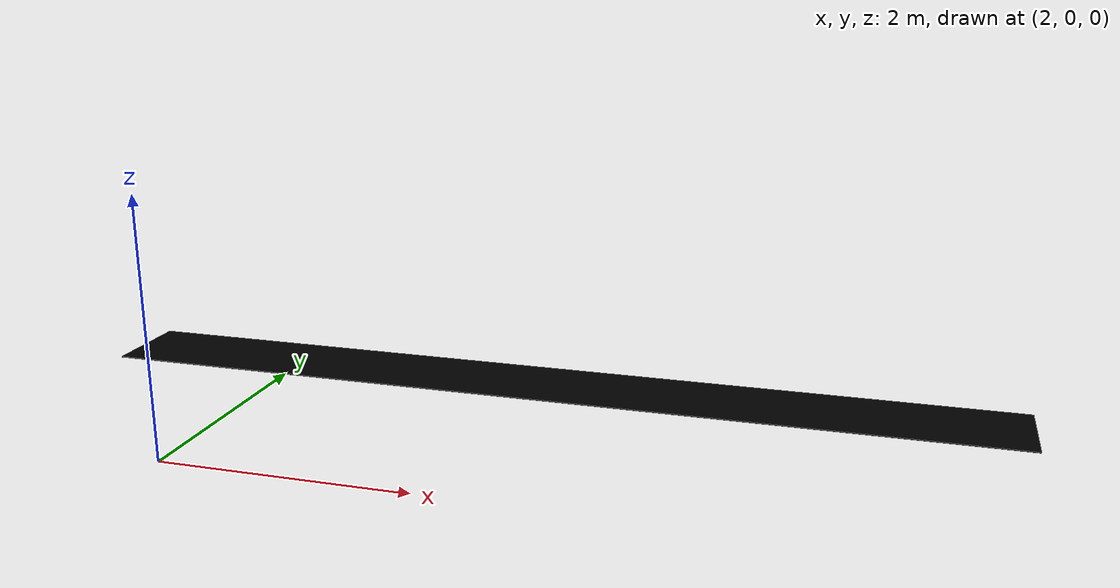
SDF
<?xml version="1.0" ?>
<sdf version="1.6">
  <model name="green_conveyor_belt">

    <model name="green_conveyor_belt_fixed">
      <static>true</static>
      <pose>0 0 0 0 0 0</pose>
      <link name="link">
        <pose>0 0 0 0 0 0</pose>
      </link>
    </model>

    <model name="green_conveyor_belt_moving">
      <static>false</static>
      <pose>0 0 0.92 0 0 0</pose>
      <link name="belt">
        <pose>5 0 -0.003 0 0 0</pose>

        <inertial>
          <inertia>
            <ixx>3.8185</ixx>
            <ixy>0</ixy>
            <ixz>0</ixz>
            <iyy>1781.5</iyy>
            <iyz>0</iyz>
            <izz>1784.72</izz>
          </inertia>
          <mass>100</mass>
        </inertial>

        <collision name="belt_collision">
          <geometry>
            <box>
              <size>6 0.6 0.006</size>
            </box>
          </geometry>

          <surface>
            <friction>
              <ode>
                <mu>1.0</mu>
                <mu2>1.0</mu2>
              </ode>
              <torsional>
                <coefficient>1000.0</coefficient>
                <patch_radius>0.1</patch_radius>
              </torsional>
            </friction>
          </surface>

        </collision>

        <visual name="visual">
        <geometry>
          <box>
            <size>6 0.6 0.006</size>
          </box>
        </geometry>
        <material>
          <ambient>0 0 0 1</ambient>
          <diffuse>0 0 0 1</diffuse>
          <specular>0.1 0.1 0.1 1</specular>
          <emissive>0 0 0 0</emissive>
        </material>
      </visual>

      </link>
    </model>

    <joint name="belt_joint" type="prismatic">
      <parent>green_conveyor_belt_fixed::link</parent>
      <child>green_conveyor_belt_moving::belt</child>
      <axis>
        <xyz>1 0 0</xyz>
        <limit>
          <lower>0</lower>
          <upper>1.0</upper>
        </limit>
      </axis>
    </joint>

    <plugin name="conveyor_belt_plugin" filename="libROSConveyorBeltPlugin.so">
      <robot_namespace>/green_conveyor</robot_namespace>
      <population_rate_modifier_topic>/gazebo_sim/population/rate_modifier</population_rate_modifier_topic>
      <link>green_conveyor_belt::green_conveyor_belt_moving::belt</link>
      <power>0</power>
      <min_velocity>0.0</min_velocity>
      <max_velocity>1.0</max_velocity>
    </plugin>

  </model>
</sdf>
